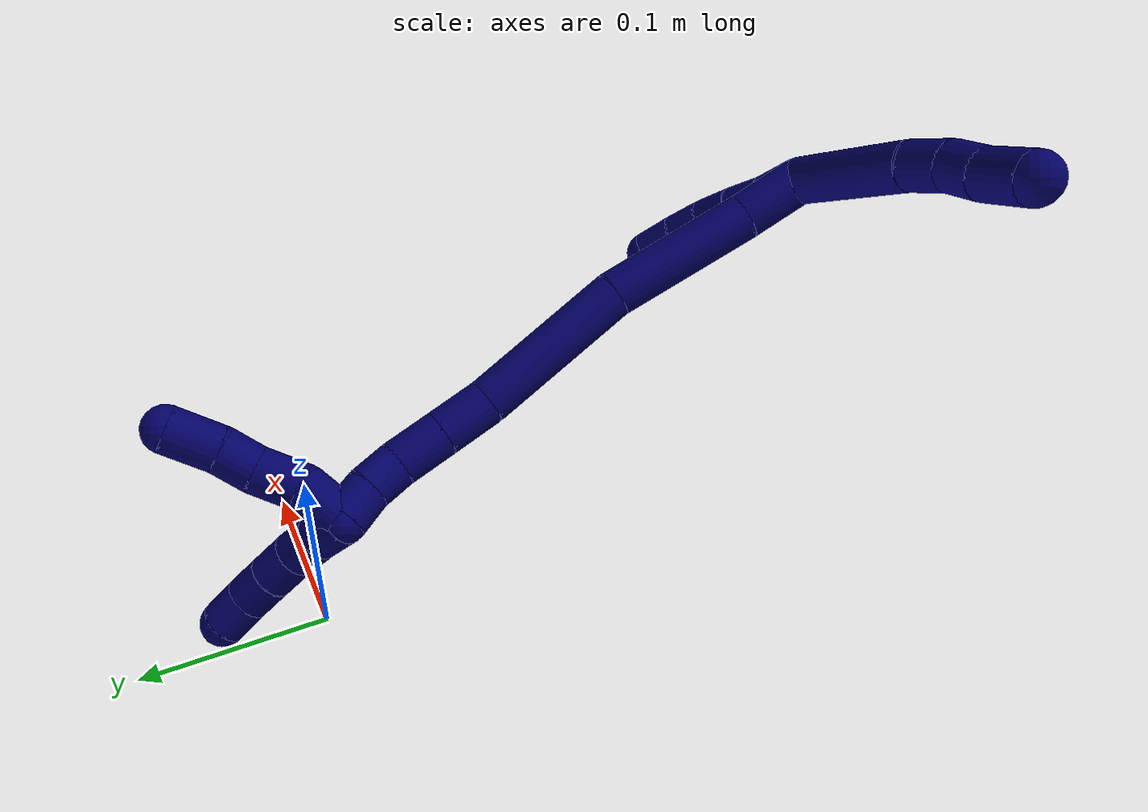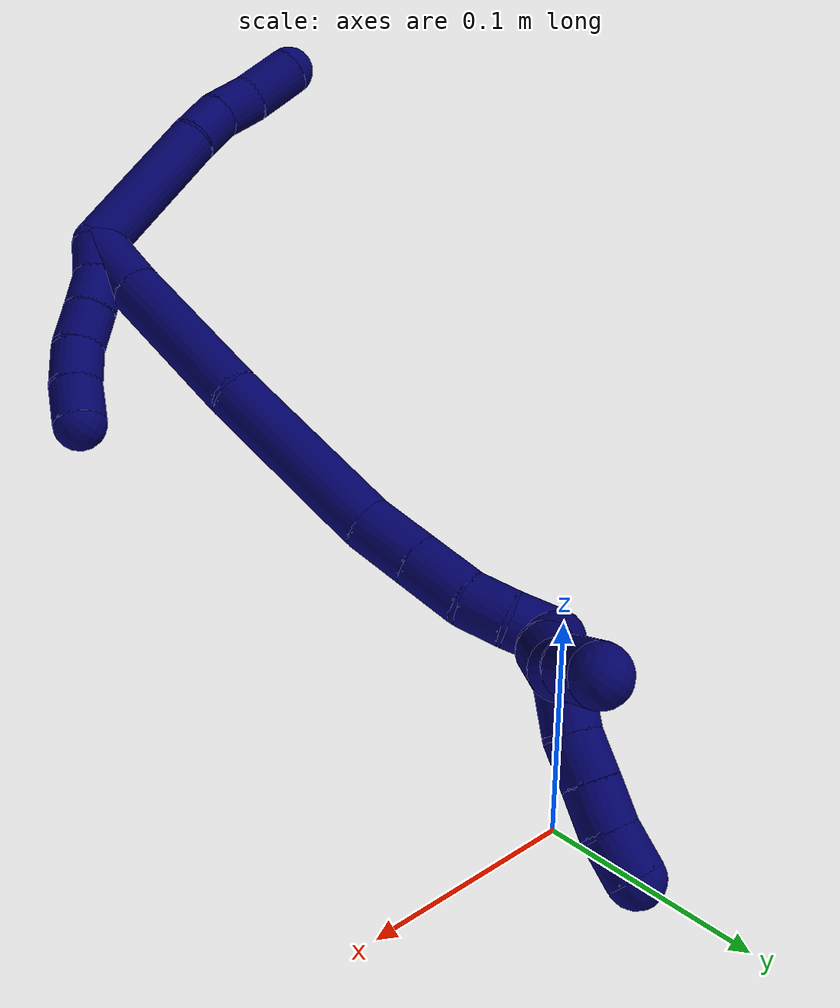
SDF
<sdf version="1.7">
 <world name="default">
  <model name="7">
   <static>0</static>
   <link name="7">
    <collision name="collision-cylinder-e_1_2_8">
     <pose>-0.033398 -0.017696 -0.008004 1.99555 -1.04408 -1.45627</pose>
     <geometry><cylinder><radius>0.0125</radius><length>0.07727</length></cylinder></geometry>
     <surface>
      <friction><ode><mu>1.16</mu><mu2>1.16</mu2><slip1>0</slip1><slip2>0</slip2></ode></friction>
      <contact><ode><kp>1e+06</kp><kd>1</kd><max_vel>0</max_vel><min_depth>0.001</min_depth></ode></contact>
     </surface>
    </collision>
    <visual name="visual-cylinder-e_1_2_8">
     <pose>-0.033398 -0.017696 -0.008004 1.99555 -1.04408 -1.45627</pose>
     <geometry><cylinder><radius>0.0125</radius><length>0.07727</length></cylinder></geometry>
     <material><ambient>0.003922 0 0.403922 1</ambient></material>
    </visual>
    <collision name="collision-cylinder-e_2_8_9">
     <pose>-0.075509 -0.041579 -0.019127 2.03786 -0.898894 -1.32918</pose>
     <geometry><cylinder><radius>0.0125</radius><length>0.022263</length></cylinder></geometry>
     <surface>
      <friction><ode><mu>1.16</mu><mu2>1.16</mu2><slip1>0</slip1><slip2>0</slip2></ode></friction>
      <contact><ode><kp>1e+06</kp><kd>1</kd><max_vel>0</max_vel><min_depth>0.001</min_depth></ode></contact>
     </surface>
    </collision>
    <visual name="visual-cylinder-e_2_8_9">
     <pose>-0.075509 -0.041579 -0.019127 2.03786 -0.898894 -1.32918</pose>
     <geometry><cylinder><radius>0.0125</radius><length>0.022263</length></cylinder></geometry>
     <material><ambient>0.003922 0 0.403922 1</ambient></material>
    </visual>
    <collision name="collision-cylinder-e_3_9_10">
     <pose>-0.092755 -0.052011 -0.027349 2.44756 -0.909765 -1.86819</pose>
     <geometry><cylinder><radius>0.0125</radius><length>0.021623</length></cylinder></geometry>
     <surface>
      <friction><ode><mu>1.16</mu><mu2>1.16</mu2><slip1>0</slip1><slip2>0</slip2></ode></friction>
      <contact><ode><kp>1e+06</kp><kd>1</kd><max_vel>0</max_vel><min_depth>0.001</min_depth></ode></contact>
     </surface>
    </collision>
    <visual name="visual-cylinder-e_3_9_10">
     <pose>-0.092755 -0.052011 -0.027349 2.44756 -0.909765 -1.86819</pose>
     <geometry><cylinder><radius>0.0125</radius><length>0.021623</length></cylinder></geometry>
     <material><ambient>0.003922 0 0.403922 1</ambient></material>
    </visual>
    <collision name="collision-cylinder-e_4_10_6">
     <pose>-0.11373 -0.061197 -0.03782 2.39773 -1.04039 -1.94589</pose>
     <geometry><cylinder><radius>0.0125</radius><length>0.028844</length></cylinder></geometry>
     <surface>
      <friction><ode><mu>1.16</mu><mu2>1.16</mu2><slip1>0</slip1><slip2>0</slip2></ode></friction>
      <contact><ode><kp>1e+06</kp><kd>1</kd><max_vel>0</max_vel><min_depth>0.001</min_depth></ode></contact>
     </surface>
    </collision>
    <visual name="visual-cylinder-e_4_10_6">
     <pose>-0.11373 -0.061197 -0.03782 2.39773 -1.04039 -1.94589</pose>
     <geometry><cylinder><radius>0.0125</radius><length>0.028844</length></cylinder></geometry>
     <material><ambient>0.003922 0 0.403922 1</ambient></material>
    </visual>
    <collision name="collision-cylinder-e_1_2_11">
     <pose>0.005785 0.00751 -0.003184 -1.97176 0.616828 -0.896791</pose>
     <geometry><cylinder><radius>0.0125</radius><length>0.02</length></cylinder></geometry>
     <surface>
      <friction><ode><mu>1.16</mu><mu2>1.16</mu2><slip1>0</slip1><slip2>0</slip2></ode></friction>
      <contact><ode><kp>1e+06</kp><kd>1</kd><max_vel>0</max_vel><min_depth>0.001</min_depth></ode></contact>
     </surface>
    </collision>
    <visual name="visual-cylinder-e_1_2_11">
     <pose>0.005785 0.00751 -0.003184 -1.97176 0.616828 -0.896791</pose>
     <geometry><cylinder><radius>0.0125</radius><length>0.02</length></cylinder></geometry>
     <material><ambient>0.003922 0 0.403922 1</ambient></material>
    </visual>
    <collision name="collision-cylinder-e_2_11_12">
     <pose>0.018597 0.022063 -0.007371 -1.71226 0.779296 -0.884073</pose>
     <geometry><cylinder><radius>0.0125</radius><length>0.02</length></cylinder></geometry>
     <surface>
      <friction><ode><mu>1.16</mu><mu2>1.16</mu2><slip1>0</slip1><slip2>0</slip2></ode></friction>
      <contact><ode><kp>1e+06</kp><kd>1</kd><max_vel>0</max_vel><min_depth>0.001</min_depth></ode></contact>
     </surface>
    </collision>
    <visual name="visual-cylinder-e_2_11_12">
     <pose>0.018597 0.022063 -0.007371 -1.71226 0.779296 -0.884073</pose>
     <geometry><cylinder><radius>0.0125</radius><length>0.02</length></cylinder></geometry>
     <material><ambient>0.003922 0 0.403922 1</ambient></material>
    </visual>
    <collision name="collision-cylinder-e_3_12_13">
     <pose>0.033154 0.035595 -0.009476 -1.73905 0.852466 -0.986704</pose>
     <geometry><cylinder><radius>0.0125</radius><length>0.02</length></cylinder></geometry>
     <surface>
      <friction><ode><mu>1.16</mu><mu2>1.16</mu2><slip1>0</slip1><slip2>0</slip2></ode></friction>
      <contact><ode><kp>1e+06</kp><kd>1</kd><max_vel>0</max_vel><min_depth>0.001</min_depth></ode></contact>
     </surface>
    </collision>
    <visual name="visual-cylinder-e_3_12_13">
     <pose>0.033154 0.035595 -0.009476 -1.73905 0.852466 -0.986704</pose>
     <geometry><cylinder><radius>0.0125</radius><length>0.02</length></cylinder></geometry>
     <material><ambient>0.003922 0 0.403922 1</ambient></material>
    </visual>
    <collision name="collision-cylinder-e_4_13_14">
     <pose>0.047052 0.049283 -0.013335 -1.93652 0.690497 -0.963528</pose>
     <geometry><cylinder><radius>0.0125</radius><length>0.02</length></cylinder></geometry>
     <surface>
      <friction><ode><mu>1.16</mu><mu2>1.16</mu2><slip1>0</slip1><slip2>0</slip2></ode></friction>
      <contact><ode><kp>1e+06</kp><kd>1</kd><max_vel>0</max_vel><min_depth>0.001</min_depth></ode></contact>
     </surface>
    </collision>
    <visual name="visual-cylinder-e_4_13_14">
     <pose>0.047052 0.049283 -0.013335 -1.93652 0.690497 -0.963528</pose>
     <geometry><cylinder><radius>0.0125</radius><length>0.02</length></cylinder></geometry>
     <material><ambient>0.003922 0 0.403922 1</ambient></material>
    </visual>
    <collision name="collision-cylinder-e_5_14_5">
     <pose>0.058733 0.064057 -0.019886 -2.03514 0.560016 -0.87158</pose>
     <geometry><cylinder><radius>0.0125</radius><length>0.02</length></cylinder></geometry>
     <surface>
      <friction><ode><mu>1.16</mu><mu2>1.16</mu2><slip1>0</slip1><slip2>0</slip2></ode></friction>
      <contact><ode><kp>1e+06</kp><kd>1</kd><max_vel>0</max_vel><min_depth>0.001</min_depth></ode></contact>
     </surface>
    </collision>
    <visual name="visual-cylinder-e_5_14_5">
     <pose>0.058733 0.064057 -0.019886 -2.03514 0.560016 -0.87158</pose>
     <geometry><cylinder><radius>0.0125</radius><length>0.02</length></cylinder></geometry>
     <material><ambient>0.003922 0 0.403922 1</ambient></material>
    </visual>
    <collision name="collision-cylinder-e_1_2_15">
     <pose>0.001998 0.014492 -0.010003 -2.17493 0.112973 -0.21465</pose>
     <geometry><cylinder><radius>0.0125</radius><length>0.035445</length></cylinder></geometry>
     <surface>
      <friction><ode><mu>1.16</mu><mu2>1.16</mu2><slip1>0</slip1><slip2>0</slip2></ode></friction>
      <contact><ode><kp>1e+06</kp><kd>1</kd><max_vel>0</max_vel><min_depth>0.001</min_depth></ode></contact>
     </surface>
    </collision>
    <visual name="visual-cylinder-e_1_2_15">
     <pose>0.001998 0.014492 -0.010003 -2.17493 0.112973 -0.21465</pose>
     <geometry><cylinder><radius>0.0125</radius><length>0.035445</length></cylinder></geometry>
     <material><ambient>0.003922 0 0.403922 1</ambient></material>
    </visual>
    <collision name="collision-cylinder-e_2_15_16">
     <pose>0.006506 0.062692 -0.041833 -2.14544 0.062423 -0.1147</pose>
     <geometry><cylinder><radius>0.0125</radius><length>0.080471</length></cylinder></geometry>
     <surface>
      <friction><ode><mu>1.16</mu><mu2>1.16</mu2><slip1>0</slip1><slip2>0</slip2></ode></friction>
      <contact><ode><kp>1e+06</kp><kd>1</kd><max_vel>0</max_vel><min_depth>0.001</min_depth></ode></contact>
     </surface>
    </collision>
    <visual name="visual-cylinder-e_2_15_16">
     <pose>0.006506 0.062692 -0.041833 -2.14544 0.062423 -0.1147</pose>
     <geometry><cylinder><radius>0.0125</radius><length>0.080471</length></cylinder></geometry>
     <material><ambient>0.003922 0 0.403922 1</ambient></material>
    </visual>
    <collision name="collision-cylinder-e_3_16_17">
     <pose>0.01129 0.128575 -0.093129 -2.31231 0.052069 -0.118186</pose>
     <geometry><cylinder><radius>0.0125</radius><length>0.087382</length></cylinder></geometry>
     <surface>
      <friction><ode><mu>1.16</mu><mu2>1.16</mu2><slip1>0</slip1><slip2>0</slip2></ode></friction>
      <contact><ode><kp>1e+06</kp><kd>1</kd><max_vel>0</max_vel><min_depth>0.001</min_depth></ode></contact>
     </surface>
    </collision>
    <visual name="visual-cylinder-e_3_16_17">
     <pose>0.01129 0.128575 -0.093129 -2.31231 0.052069 -0.118186</pose>
     <geometry><cylinder><radius>0.0125</radius><length>0.087382</length></cylinder></geometry>
     <material><ambient>0.003922 0 0.403922 1</ambient></material>
    </visual>
    <collision name="collision-cylinder-e_4_17_18">
     <pose>0.012496 0.171969 -0.131436 -2.23806 -0.07459 0.153488</pose>
     <geometry><cylinder><radius>0.0125</radius><length>0.028641</length></cylinder></geometry>
     <surface>
      <friction><ode><mu>1.16</mu><mu2>1.16</mu2><slip1>0</slip1><slip2>0</slip2></ode></friction>
      <contact><ode><kp>1e+06</kp><kd>1</kd><max_vel>0</max_vel><min_depth>0.001</min_depth></ode></contact>
     </surface>
    </collision>
    <visual name="visual-cylinder-e_4_17_18">
     <pose>0.012496 0.171969 -0.131436 -2.23806 -0.07459 0.153488</pose>
     <geometry><cylinder><radius>0.0125</radius><length>0.028641</length></cylinder></geometry>
     <material><ambient>0.003922 0 0.403922 1</ambient></material>
    </visual>
    <collision name="collision-cylinder-e_5_18_19">
     <pose>0.010394 0.194128 -0.148834 -2.23472 -0.074417 0.152488</pose>
     <geometry><cylinder><radius>0.0125</radius><length>0.027862</length></cylinder></geometry>
     <surface>
      <friction><ode><mu>1.16</mu><mu2>1.16</mu2><slip1>0</slip1><slip2>0</slip2></ode></friction>
      <contact><ode><kp>1e+06</kp><kd>1</kd><max_vel>0</max_vel><min_depth>0.001</min_depth></ode></contact>
     </surface>
    </collision>
    <visual name="visual-cylinder-e_5_18_19">
     <pose>0.010394 0.194128 -0.148834 -2.23472 -0.074417 0.152488</pose>
     <geometry><cylinder><radius>0.0125</radius><length>0.027862</length></cylinder></geometry>
     <material><ambient>0.003922 0 0.403922 1</ambient></material>
    </visual>
    <collision name="collision-cylinder-e_6_19_20">
     <pose>0.006802 0.211916 -0.164252 -2.35699 -0.257855 0.60731</pose>
     <geometry><cylinder><radius>0.0125</radius><length>0.020043</length></cylinder></geometry>
     <surface>
      <friction><ode><mu>1.16</mu><mu2>1.16</mu2><slip1>0</slip1><slip2>0</slip2></ode></friction>
      <contact><ode><kp>1e+06</kp><kd>1</kd><max_vel>0</max_vel><min_depth>0.001</min_depth></ode></contact>
     </surface>
    </collision>
    <visual name="visual-cylinder-e_6_19_20">
     <pose>0.006802 0.211916 -0.164252 -2.35699 -0.257855 0.60731</pose>
     <geometry><cylinder><radius>0.0125</radius><length>0.020043</length></cylinder></geometry>
     <material><ambient>0.003922 0 0.403922 1</ambient></material>
    </visual>
    <collision name="collision-cylinder-e_7_20_1">
     <pose>0.00134 0.223989 -0.179221 -2.56927 -0.292548 0.928418</pose>
     <geometry><cylinder><radius>0.0125</radius><length>0.020157</length></cylinder></geometry>
     <surface>
      <friction><ode><mu>1.16</mu><mu2>1.16</mu2><slip1>0</slip1><slip2>0</slip2></ode></friction>
      <contact><ode><kp>1e+06</kp><kd>1</kd><max_vel>0</max_vel><min_depth>0.001</min_depth></ode></contact>
     </surface>
    </collision>
    <visual name="visual-cylinder-e_7_20_1">
     <pose>0.00134 0.223989 -0.179221 -2.56927 -0.292548 0.928418</pose>
     <geometry><cylinder><radius>0.0125</radius><length>0.020157</length></cylinder></geometry>
     <material><ambient>0.003922 0 0.403922 1</ambient></material>
    </visual>
    <collision name="collision-cylinder-e_1_1_21">
     <pose>0.004603 0.236069 -0.191203 -2.0848 0.664812 -1.06808</pose>
     <geometry><cylinder><radius>0.0125</radius><length>0.02</length></cylinder></geometry>
     <surface>
      <friction><ode><mu>1.16</mu><mu2>1.16</mu2><slip1>0</slip1><slip2>0</slip2></ode></friction>
      <contact><ode><kp>1e+06</kp><kd>1</kd><max_vel>0</max_vel><min_depth>0.001</min_depth></ode></contact>
     </surface>
    </collision>
    <visual name="visual-cylinder-e_1_1_21">
     <pose>0.004603 0.236069 -0.191203 -2.0848 0.664812 -1.06808</pose>
     <geometry><cylinder><radius>0.0125</radius><length>0.02</length></cylinder></geometry>
     <material><ambient>0.003922 0 0.403922 1</ambient></material>
    </visual>
    <collision name="collision-cylinder-e_2_21_22">
     <pose>0.016956 0.2494 -0.199522 -2.17266 0.666731 -1.16391</pose>
     <geometry><cylinder><radius>0.0125</radius><length>0.02</length></cylinder></geometry>
     <surface>
      <friction><ode><mu>1.16</mu><mu2>1.16</mu2><slip1>0</slip1><slip2>0</slip2></ode></friction>
      <contact><ode><kp>1e+06</kp><kd>1</kd><max_vel>0</max_vel><min_depth>0.001</min_depth></ode></contact>
     </surface>
    </collision>
    <visual name="visual-cylinder-e_2_21_22">
     <pose>0.016956 0.2494 -0.199522 -2.17266 0.666731 -1.16391</pose>
     <geometry><cylinder><radius>0.0125</radius><length>0.02</length></cylinder></geometry>
     <material><ambient>0.003922 0 0.403922 1</ambient></material>
    </visual>
    <collision name="collision-cylinder-e_3_22_23">
     <pose>0.027821 0.262571 -0.209741 -2.28213 0.487107 -0.99366</pose>
     <geometry><cylinder><radius>0.0125</radius><length>0.02</length></cylinder></geometry>
     <surface>
      <friction><ode><mu>1.16</mu><mu2>1.16</mu2><slip1>0</slip1><slip2>0</slip2></ode></friction>
      <contact><ode><kp>1e+06</kp><kd>1</kd><max_vel>0</max_vel><min_depth>0.001</min_depth></ode></contact>
     </surface>
    </collision>
    <visual name="visual-cylinder-e_3_22_23">
     <pose>0.027821 0.262571 -0.209741 -2.28213 0.487107 -0.99366</pose>
     <geometry><cylinder><radius>0.0125</radius><length>0.02</length></cylinder></geometry>
     <material><ambient>0.003922 0 0.403922 1</ambient></material>
    </visual>
    <collision name="collision-cylinder-e_4_23_24">
     <pose>0.037288 0.275838 -0.221331 -2.29565 0.499074 -1.03032</pose>
     <geometry><cylinder><radius>0.0125</radius><length>0.02</length></cylinder></geometry>
     <surface>
      <friction><ode><mu>1.16</mu><mu2>1.16</mu2><slip1>0</slip1><slip2>0</slip2></ode></friction>
      <contact><ode><kp>1e+06</kp><kd>1</kd><max_vel>0</max_vel><min_depth>0.001</min_depth></ode></contact>
     </surface>
    </collision>
    <visual name="visual-cylinder-e_4_23_24">
     <pose>0.037288 0.275838 -0.221331 -2.29565 0.499074 -1.03032</pose>
     <geometry><cylinder><radius>0.0125</radius><length>0.02</length></cylinder></geometry>
     <material><ambient>0.003922 0 0.403922 1</ambient></material>
    </visual>
    <collision name="collision-cylinder-e_5_24_4">
     <pose>0.045507 0.289042 -0.233805 -2.35778 0.350446 -0.809443</pose>
     <geometry><cylinder><radius>0.0125</radius><length>0.02</length></cylinder></geometry>
     <surface>
      <friction><ode><mu>1.16</mu><mu2>1.16</mu2><slip1>0</slip1><slip2>0</slip2></ode></friction>
      <contact><ode><kp>1e+06</kp><kd>1</kd><max_vel>0</max_vel><min_depth>0.001</min_depth></ode></contact>
     </surface>
    </collision>
    <visual name="visual-cylinder-e_5_24_4">
     <pose>0.045507 0.289042 -0.233805 -2.35778 0.350446 -0.809443</pose>
     <geometry><cylinder><radius>0.0125</radius><length>0.02</length></cylinder></geometry>
     <material><ambient>0.003922 0 0.403922 1</ambient></material>
    </visual>
    <collision name="collision-cylinder-e_1_1_25">
     <pose>0.000129 0.239579 -0.179631 -0.931643 0.130554 -0.065702</pose>
     <geometry><cylinder><radius>0.0125</radius><length>0.026047</length></cylinder></geometry>
     <surface>
      <friction><ode><mu>1.16</mu><mu2>1.16</mu2><slip1>0</slip1><slip2>0</slip2></ode></friction>
      <contact><ode><kp>1e+06</kp><kd>1</kd><max_vel>0</max_vel><min_depth>0.001</min_depth></ode></contact>
     </surface>
    </collision>
    <visual name="visual-cylinder-e_1_1_25">
     <pose>0.000129 0.239579 -0.179631 -0.931643 0.130554 -0.065702</pose>
     <geometry><cylinder><radius>0.0125</radius><length>0.026047</length></cylinder></geometry>
     <material><ambient>0.003922 0 0.403922 1</ambient></material>
    </visual>
    <collision name="collision-cylinder-e_2_25_26">
     <pose>0.001569 0.262282 -0.167757 -1.24474 -0.019617 0.014075</pose>
     <geometry><cylinder><radius>0.0125</radius><length>0.026056</length></cylinder></geometry>
     <surface>
      <friction><ode><mu>1.16</mu><mu2>1.16</mu2><slip1>0</slip1><slip2>0</slip2></ode></friction>
      <contact><ode><kp>1e+06</kp><kd>1</kd><max_vel>0</max_vel><min_depth>0.001</min_depth></ode></contact>
     </surface>
    </collision>
    <visual name="visual-cylinder-e_2_25_26">
     <pose>0.001569 0.262282 -0.167757 -1.24474 -0.019617 0.014075</pose>
     <geometry><cylinder><radius>0.0125</radius><length>0.026056</length></cylinder></geometry>
     <material><ambient>0.003922 0 0.403922 1</ambient></material>
    </visual>
    <collision name="collision-cylinder-e_3_26_27">
     <pose>-0.0017 0.283287 -0.159135 -1.09651 -0.300038 0.1841</pose>
     <geometry><cylinder><radius>0.0125</radius><length>0.020394</length></cylinder></geometry>
     <surface>
      <friction><ode><mu>1.16</mu><mu2>1.16</mu2><slip1>0</slip1><slip2>0</slip2></ode></friction>
      <contact><ode><kp>1e+06</kp><kd>1</kd><max_vel>0</max_vel><min_depth>0.001</min_depth></ode></contact>
     </surface>
    </collision>
    <visual name="visual-cylinder-e_3_26_27">
     <pose>-0.0017 0.283287 -0.159135 -1.09651 -0.300038 0.1841</pose>
     <geometry><cylinder><radius>0.0125</radius><length>0.020394</length></cylinder></geometry>
     <material><ambient>0.003922 0 0.403922 1</ambient></material>
    </visual>
    <collision name="collision-cylinder-e_4_27_3">
     <pose>-0.008239 0.304599 -0.150591 -1.25759 -0.259218 0.18902</pose>
     <geometry><cylinder><radius>0.0125</radius><length>0.027504</length></cylinder></geometry>
     <surface>
      <friction><ode><mu>1.16</mu><mu2>1.16</mu2><slip1>0</slip1><slip2>0</slip2></ode></friction>
      <contact><ode><kp>1e+06</kp><kd>1</kd><max_vel>0</max_vel><min_depth>0.001</min_depth></ode></contact>
     </surface>
    </collision>
    <visual name="visual-cylinder-e_4_27_3">
     <pose>-0.008239 0.304599 -0.150591 -1.25759 -0.259218 0.18902</pose>
     <geometry><cylinder><radius>0.0125</radius><length>0.027504</length></cylinder></geometry>
     <material><ambient>0.003922 0 0.403922 1</ambient></material>
    </visual>
    <collision name="collision-sphere-3">
     <pose>-0.011764 0.317244 -0.146495 0 -0 0</pose>
     <geometry><sphere><radius>0.0125</radius></sphere></geometry>
     <surface>
      <friction><ode><mu>1.16</mu><mu2>1.16</mu2><slip1>0</slip1><slip2>0</slip2></ode></friction>
      <contact><ode><kp>1e+06</kp><kd>1</kd><max_vel>0</max_vel><min_depth>0.001</min_depth></ode></contact>
     </surface>
    </collision>
    <visual name="visual-sphere-3">
     <pose>-0.011764 0.317244 -0.146495 0 -0 0</pose>
     <geometry><sphere><radius>0.0125</radius></sphere></geometry>
     <material><ambient>0.003922 0 0.403922 1</ambient></material>
    </visual>
    <collision name="collision-sphere-27">
     <pose>-0.004714 0.291953 -0.154686 0 -0 0</pose>
     <geometry><sphere><radius>0.0125</radius></sphere></geometry>
     <surface>
      <friction><ode><mu>1.16</mu><mu2>1.16</mu2><slip1>0</slip1><slip2>0</slip2></ode></friction>
      <contact><ode><kp>1e+06</kp><kd>1</kd><max_vel>0</max_vel><min_depth>0.001</min_depth></ode></contact>
     </surface>
    </collision>
    <visual name="visual-sphere-27">
     <pose>-0.004714 0.291953 -0.154686 0 -0 0</pose>
     <geometry><sphere><radius>0.0125</radius></sphere></geometry>
     <material><ambient>0.003922 0 0.403922 1</ambient></material>
    </visual>
    <collision name="collision-sphere-26">
     <pose>0.001313 0.274621 -0.163584 0 -0 0</pose>
     <geometry><sphere><radius>0.0125</radius></sphere></geometry>
     <surface>
      <friction><ode><mu>1.16</mu><mu2>1.16</mu2><slip1>0</slip1><slip2>0</slip2></ode></friction>
      <contact><ode><kp>1e+06</kp><kd>1</kd><max_vel>0</max_vel><min_depth>0.001</min_depth></ode></contact>
     </surface>
    </collision>
    <visual name="visual-sphere-26">
     <pose>0.001313 0.274621 -0.163584 0 -0 0</pose>
     <geometry><sphere><radius>0.0125</radius></sphere></geometry>
     <material><ambient>0.003922 0 0.403922 1</ambient></material>
    </visual>
    <collision name="collision-sphere-25">
     <pose>0.001824 0.249943 -0.171929 0 -0 0</pose>
     <geometry><sphere><radius>0.0125</radius></sphere></geometry>
     <surface>
      <friction><ode><mu>1.16</mu><mu2>1.16</mu2><slip1>0</slip1><slip2>0</slip2></ode></friction>
      <contact><ode><kp>1e+06</kp><kd>1</kd><max_vel>0</max_vel><min_depth>0.001</min_depth></ode></contact>
     </surface>
    </collision>
    <visual name="visual-sphere-25">
     <pose>0.001824 0.249943 -0.171929 0 -0 0</pose>
     <geometry><sphere><radius>0.0125</radius></sphere></geometry>
     <material><ambient>0.003922 0 0.403922 1</ambient></material>
    </visual>
    <collision name="collision-sphere-4">
     <pose>0.04894 0.295672 -0.240456 0 -0 0</pose>
     <geometry><sphere><radius>0.0125</radius></sphere></geometry>
     <surface>
      <friction><ode><mu>1.16</mu><mu2>1.16</mu2><slip1>0</slip1><slip2>0</slip2></ode></friction>
      <contact><ode><kp>1e+06</kp><kd>1</kd><max_vel>0</max_vel><min_depth>0.001</min_depth></ode></contact>
     </surface>
    </collision>
    <visual name="visual-sphere-4">
     <pose>0.04894 0.295672 -0.240456 0 -0 0</pose>
     <geometry><sphere><radius>0.0125</radius></sphere></geometry>
     <material><ambient>0.003922 0 0.403922 1</ambient></material>
    </visual>
    <collision name="collision-sphere-24">
     <pose>0.042074 0.282411 -0.227153 0 -0 0</pose>
     <geometry><sphere><radius>0.0125</radius></sphere></geometry>
     <surface>
      <friction><ode><mu>1.16</mu><mu2>1.16</mu2><slip1>0</slip1><slip2>0</slip2></ode></friction>
      <contact><ode><kp>1e+06</kp><kd>1</kd><max_vel>0</max_vel><min_depth>0.001</min_depth></ode></contact>
     </surface>
    </collision>
    <visual name="visual-sphere-24">
     <pose>0.042074 0.282411 -0.227153 0 -0 0</pose>
     <geometry><sphere><radius>0.0125</radius></sphere></geometry>
     <material><ambient>0.003922 0 0.403922 1</ambient></material>
    </visual>
    <collision name="collision-sphere-23">
     <pose>0.032502 0.269265 -0.21551 0 -0 0</pose>
     <geometry><sphere><radius>0.0125</radius></sphere></geometry>
     <surface>
      <friction><ode><mu>1.16</mu><mu2>1.16</mu2><slip1>0</slip1><slip2>0</slip2></ode></friction>
      <contact><ode><kp>1e+06</kp><kd>1</kd><max_vel>0</max_vel><min_depth>0.001</min_depth></ode></contact>
     </surface>
    </collision>
    <visual name="visual-sphere-23">
     <pose>0.032502 0.269265 -0.21551 0 -0 0</pose>
     <geometry><sphere><radius>0.0125</radius></sphere></geometry>
     <material><ambient>0.003922 0 0.403922 1</ambient></material>
    </visual>
    <collision name="collision-sphere-22">
     <pose>0.02314 0.255877 -0.203972 0 -0 0</pose>
     <geometry><sphere><radius>0.0125</radius></sphere></geometry>
     <surface>
      <friction><ode><mu>1.16</mu><mu2>1.16</mu2><slip1>0</slip1><slip2>0</slip2></ode></friction>
      <contact><ode><kp>1e+06</kp><kd>1</kd><max_vel>0</max_vel><min_depth>0.001</min_depth></ode></contact>
     </surface>
    </collision>
    <visual name="visual-sphere-22">
     <pose>0.02314 0.255877 -0.203972 0 -0 0</pose>
     <geometry><sphere><radius>0.0125</radius></sphere></geometry>
     <material><ambient>0.003922 0 0.403922 1</ambient></material>
    </visual>
    <collision name="collision-sphere-21">
     <pose>0.010772 0.242922 -0.195073 0 -0 0</pose>
     <geometry><sphere><radius>0.0125</radius></sphere></geometry>
     <surface>
      <friction><ode><mu>1.16</mu><mu2>1.16</mu2><slip1>0</slip1><slip2>0</slip2></ode></friction>
      <contact><ode><kp>1e+06</kp><kd>1</kd><max_vel>0</max_vel><min_depth>0.001</min_depth></ode></contact>
     </surface>
    </collision>
    <visual name="visual-sphere-21">
     <pose>0.010772 0.242922 -0.195073 0 -0 0</pose>
     <geometry><sphere><radius>0.0125</radius></sphere></geometry>
     <material><ambient>0.003922 0 0.403922 1</ambient></material>
    </visual>
    <collision name="collision-sphere-1">
     <pose>-0.001566 0.229215 -0.187334 0 -0 0</pose>
     <geometry><sphere><radius>0.0125</radius></sphere></geometry>
     <surface>
      <friction><ode><mu>1.16</mu><mu2>1.16</mu2><slip1>0</slip1><slip2>0</slip2></ode></friction>
      <contact><ode><kp>1e+06</kp><kd>1</kd><max_vel>0</max_vel><min_depth>0.001</min_depth></ode></contact>
     </surface>
    </collision>
    <visual name="visual-sphere-1">
     <pose>-0.001566 0.229215 -0.187334 0 -0 0</pose>
     <geometry><sphere><radius>0.0125</radius></sphere></geometry>
     <material><ambient>0.003922 0 0.403922 1</ambient></material>
    </visual>
    <collision name="collision-sphere-11">
     <pose>0.011569 0.01502 -0.006368 0 -0 0</pose>
     <geometry><sphere><radius>0.0125</radius></sphere></geometry>
     <surface>
      <friction><ode><mu>1.16</mu><mu2>1.16</mu2><slip1>0</slip1><slip2>0</slip2></ode></friction>
      <contact><ode><kp>1e+06</kp><kd>1</kd><max_vel>0</max_vel><min_depth>0.001</min_depth></ode></contact>
     </surface>
    </collision>
    <visual name="visual-sphere-11">
     <pose>0.011569 0.01502 -0.006368 0 -0 0</pose>
     <geometry><sphere><radius>0.0125</radius></sphere></geometry>
     <material><ambient>0.003922 0 0.403922 1</ambient></material>
    </visual>
    <collision name="collision-sphere-6">
     <pose>-0.12617 -0.066137 -0.043189 0 -0 0</pose>
     <geometry><sphere><radius>0.0125</radius></sphere></geometry>
     <surface>
      <friction><ode><mu>1.16</mu><mu2>1.16</mu2><slip1>0</slip1><slip2>0</slip2></ode></friction>
      <contact><ode><kp>1e+06</kp><kd>1</kd><max_vel>0</max_vel><min_depth>0.001</min_depth></ode></contact>
     </surface>
    </collision>
    <visual name="visual-sphere-6">
     <pose>-0.12617 -0.066137 -0.043189 0 -0 0</pose>
     <geometry><sphere><radius>0.0125</radius></sphere></geometry>
     <material><ambient>0.003922 0 0.403922 1</ambient></material>
    </visual>
    <collision name="collision-sphere-10">
     <pose>-0.101289 -0.056257 -0.032451 0 -0 0</pose>
     <geometry><sphere><radius>0.0125</radius></sphere></geometry>
     <surface>
      <friction><ode><mu>1.16</mu><mu2>1.16</mu2><slip1>0</slip1><slip2>0</slip2></ode></friction>
      <contact><ode><kp>1e+06</kp><kd>1</kd><max_vel>0</max_vel><min_depth>0.001</min_depth></ode></contact>
     </surface>
    </collision>
    <visual name="visual-sphere-10">
     <pose>-0.101289 -0.056257 -0.032451 0 -0 0</pose>
     <geometry><sphere><radius>0.0125</radius></sphere></geometry>
     <material><ambient>0.003922 0 0.403922 1</ambient></material>
    </visual>
    <collision name="collision-sphere-9">
     <pose>-0.08422 -0.047766 -0.022247 0 -0 0</pose>
     <geometry><sphere><radius>0.0125</radius></sphere></geometry>
     <surface>
      <friction><ode><mu>1.16</mu><mu2>1.16</mu2><slip1>0</slip1><slip2>0</slip2></ode></friction>
      <contact><ode><kp>1e+06</kp><kd>1</kd><max_vel>0</max_vel><min_depth>0.001</min_depth></ode></contact>
     </surface>
    </collision>
    <visual name="visual-sphere-9">
     <pose>-0.08422 -0.047766 -0.022247 0 -0 0</pose>
     <geometry><sphere><radius>0.0125</radius></sphere></geometry>
     <material><ambient>0.003922 0 0.403922 1</ambient></material>
    </visual>
    <collision name="collision-sphere-2">
     <geometry><sphere><radius>0.0125</radius></sphere></geometry>
     <surface>
      <friction><ode><mu>1.16</mu><mu2>1.16</mu2><slip1>0</slip1><slip2>0</slip2></ode></friction>
      <contact><ode><kp>1e+06</kp><kd>1</kd><max_vel>0</max_vel><min_depth>0.001</min_depth></ode></contact>
     </surface>
    </collision>
    <visual name="visual-sphere-2">
     <geometry><sphere><radius>0.0125</radius></sphere></geometry>
     <material><ambient>0.003922 0 0.403922 1</ambient></material>
    </visual>
    <collision name="collision-sphere-19">
     <pose>0.009358 0.205069 -0.157394 0 -0 0</pose>
     <geometry><sphere><radius>0.0125</radius></sphere></geometry>
     <surface>
      <friction><ode><mu>1.16</mu><mu2>1.16</mu2><slip1>0</slip1><slip2>0</slip2></ode></friction>
      <contact><ode><kp>1e+06</kp><kd>1</kd><max_vel>0</max_vel><min_depth>0.001</min_depth></ode></contact>
     </surface>
    </collision>
    <visual name="visual-sphere-19">
     <pose>0.009358 0.205069 -0.157394 0 -0 0</pose>
     <geometry><sphere><radius>0.0125</radius></sphere></geometry>
     <material><ambient>0.003922 0 0.403922 1</ambient></material>
    </visual>
    <collision name="collision-sphere-8">
     <pose>-0.066797 -0.035392 -0.016007 0 -0 0</pose>
     <geometry><sphere><radius>0.0125</radius></sphere></geometry>
     <surface>
      <friction><ode><mu>1.16</mu><mu2>1.16</mu2><slip1>0</slip1><slip2>0</slip2></ode></friction>
      <contact><ode><kp>1e+06</kp><kd>1</kd><max_vel>0</max_vel><min_depth>0.001</min_depth></ode></contact>
     </surface>
    </collision>
    <visual name="visual-sphere-8">
     <pose>-0.066797 -0.035392 -0.016007 0 -0 0</pose>
     <geometry><sphere><radius>0.0125</radius></sphere></geometry>
     <material><ambient>0.003922 0 0.403922 1</ambient></material>
    </visual>
    <collision name="collision-sphere-12">
     <pose>0.025625 0.029106 -0.008374 0 -0 0</pose>
     <geometry><sphere><radius>0.0125</radius></sphere></geometry>
     <surface>
      <friction><ode><mu>1.16</mu><mu2>1.16</mu2><slip1>0</slip1><slip2>0</slip2></ode></friction>
      <contact><ode><kp>1e+06</kp><kd>1</kd><max_vel>0</max_vel><min_depth>0.001</min_depth></ode></contact>
     </surface>
    </collision>
    <visual name="visual-sphere-12">
     <pose>0.025625 0.029106 -0.008374 0 -0 0</pose>
     <geometry><sphere><radius>0.0125</radius></sphere></geometry>
     <material><ambient>0.003922 0 0.403922 1</ambient></material>
    </visual>
    <collision name="collision-sphere-13">
     <pose>0.040683 0.042083 -0.010578 0 -0 0</pose>
     <geometry><sphere><radius>0.0125</radius></sphere></geometry>
     <surface>
      <friction><ode><mu>1.16</mu><mu2>1.16</mu2><slip1>0</slip1><slip2>0</slip2></ode></friction>
      <contact><ode><kp>1e+06</kp><kd>1</kd><max_vel>0</max_vel><min_depth>0.001</min_depth></ode></contact>
     </surface>
    </collision>
    <visual name="visual-sphere-13">
     <pose>0.040683 0.042083 -0.010578 0 -0 0</pose>
     <geometry><sphere><radius>0.0125</radius></sphere></geometry>
     <material><ambient>0.003922 0 0.403922 1</ambient></material>
    </visual>
    <collision name="collision-sphere-14">
     <pose>0.053421 0.056482 -0.016092 0 -0 0</pose>
     <geometry><sphere><radius>0.0125</radius></sphere></geometry>
     <surface>
      <friction><ode><mu>1.16</mu><mu2>1.16</mu2><slip1>0</slip1><slip2>0</slip2></ode></friction>
      <contact><ode><kp>1e+06</kp><kd>1</kd><max_vel>0</max_vel><min_depth>0.001</min_depth></ode></contact>
     </surface>
    </collision>
    <visual name="visual-sphere-14">
     <pose>0.053421 0.056482 -0.016092 0 -0 0</pose>
     <geometry><sphere><radius>0.0125</radius></sphere></geometry>
     <material><ambient>0.003922 0 0.403922 1</ambient></material>
    </visual>
    <collision name="collision-sphere-5">
     <pose>0.064045 0.071633 -0.02368 0 -0 0</pose>
     <geometry><sphere><radius>0.0125</radius></sphere></geometry>
     <surface>
      <friction><ode><mu>1.16</mu><mu2>1.16</mu2><slip1>0</slip1><slip2>0</slip2></ode></friction>
      <contact><ode><kp>1e+06</kp><kd>1</kd><max_vel>0</max_vel><min_depth>0.001</min_depth></ode></contact>
     </surface>
    </collision>
    <visual name="visual-sphere-5">
     <pose>0.064045 0.071633 -0.02368 0 -0 0</pose>
     <geometry><sphere><radius>0.0125</radius></sphere></geometry>
     <material><ambient>0.003922 0 0.403922 1</ambient></material>
    </visual>
    <collision name="collision-sphere-15">
     <pose>0.003996 0.028985 -0.020006 0 -0 0</pose>
     <geometry><sphere><radius>0.0125</radius></sphere></geometry>
     <surface>
      <friction><ode><mu>1.16</mu><mu2>1.16</mu2><slip1>0</slip1><slip2>0</slip2></ode></friction>
      <contact><ode><kp>1e+06</kp><kd>1</kd><max_vel>0</max_vel><min_depth>0.001</min_depth></ode></contact>
     </surface>
    </collision>
    <visual name="visual-sphere-15">
     <pose>0.003996 0.028985 -0.020006 0 -0 0</pose>
     <geometry><sphere><radius>0.0125</radius></sphere></geometry>
     <material><ambient>0.003922 0 0.403922 1</ambient></material>
    </visual>
    <collision name="collision-sphere-16">
     <pose>0.009016 0.0964 -0.06366 0 -0 0</pose>
     <geometry><sphere><radius>0.0125</radius></sphere></geometry>
     <surface>
      <friction><ode><mu>1.16</mu><mu2>1.16</mu2><slip1>0</slip1><slip2>0</slip2></ode></friction>
      <contact><ode><kp>1e+06</kp><kd>1</kd><max_vel>0</max_vel><min_depth>0.001</min_depth></ode></contact>
     </surface>
    </collision>
    <visual name="visual-sphere-16">
     <pose>0.009016 0.0964 -0.06366 0 -0 0</pose>
     <geometry><sphere><radius>0.0125</radius></sphere></geometry>
     <material><ambient>0.003922 0 0.403922 1</ambient></material>
    </visual>
    <collision name="collision-sphere-17">
     <pose>0.013564 0.160751 -0.122598 0 -0 0</pose>
     <geometry><sphere><radius>0.0125</radius></sphere></geometry>
     <surface>
      <friction><ode><mu>1.16</mu><mu2>1.16</mu2><slip1>0</slip1><slip2>0</slip2></ode></friction>
      <contact><ode><kp>1e+06</kp><kd>1</kd><max_vel>0</max_vel><min_depth>0.001</min_depth></ode></contact>
     </surface>
    </collision>
    <visual name="visual-sphere-17">
     <pose>0.013564 0.160751 -0.122598 0 -0 0</pose>
     <geometry><sphere><radius>0.0125</radius></sphere></geometry>
     <material><ambient>0.003922 0 0.403922 1</ambient></material>
    </visual>
    <collision name="collision-sphere-18">
     <pose>0.011429 0.183187 -0.140273 0 -0 0</pose>
     <geometry><sphere><radius>0.0125</radius></sphere></geometry>
     <surface>
      <friction><ode><mu>1.16</mu><mu2>1.16</mu2><slip1>0</slip1><slip2>0</slip2></ode></friction>
      <contact><ode><kp>1e+06</kp><kd>1</kd><max_vel>0</max_vel><min_depth>0.001</min_depth></ode></contact>
     </surface>
    </collision>
    <visual name="visual-sphere-18">
     <pose>0.011429 0.183187 -0.140273 0 -0 0</pose>
     <geometry><sphere><radius>0.0125</radius></sphere></geometry>
     <material><ambient>0.003922 0 0.403922 1</ambient></material>
    </visual>
    <collision name="collision-sphere-20">
     <pose>0.004247 0.218762 -0.171109 0 -0 0</pose>
     <geometry><sphere><radius>0.0125</radius></sphere></geometry>
     <surface>
      <friction><ode><mu>1.16</mu><mu2>1.16</mu2><slip1>0</slip1><slip2>0</slip2></ode></friction>
      <contact><ode><kp>1e+06</kp><kd>1</kd><max_vel>0</max_vel><min_depth>0.001</min_depth></ode></contact>
     </surface>
    </collision>
    <visual name="visual-sphere-20">
     <pose>0.004247 0.218762 -0.171109 0 -0 0</pose>
     <geometry><sphere><radius>0.0125</radius></sphere></geometry>
     <material><ambient>0.003922 0 0.403922 1</ambient></material>
    </visual>
    <inertial>
     <pose>-0.001951 0.11702 -0.090687 0 -0 0</pose>
     <mass>0.75</mass>
     <inertia>
      <ixx>8.9e-05</ixx>
      <ixy>0</ixy>
      <ixz>0</ixz>
      <iyy>-4.3e-05</iyy>
      <iyz>0</iyz>
      <izz>-8.2e-05</izz>
     </inertia>
    </inertial>
   </link>
   <pose>0.021493 -0.285807 0.194337 0.067199 0.843739 -0.366818</pose>
  </model>
 </world>
</sdf>
